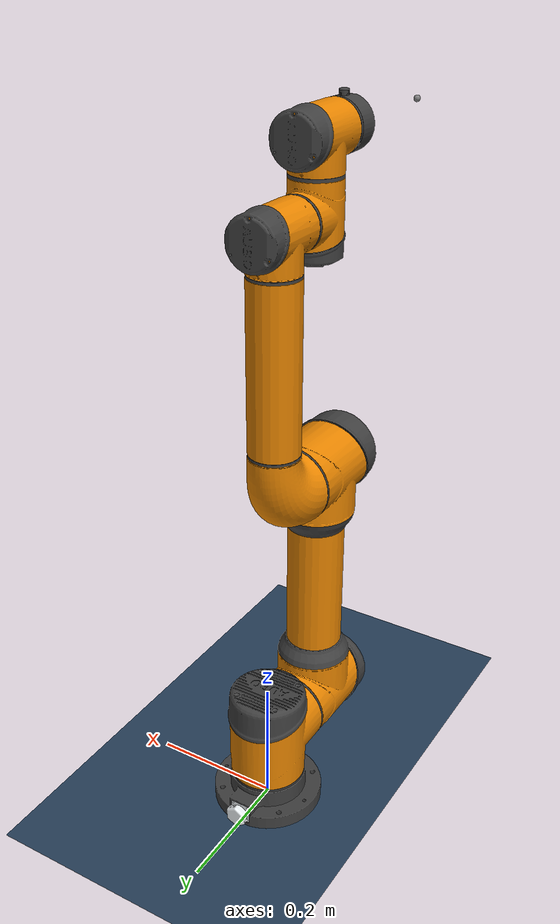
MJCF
<mujoco model="ur5e scene">

    <include file="aubo_i5.xml"/>

    <statistic center="0.3 0 0.4" extent="0.8"/>

    <visual>
      <headlight diffuse="0.6 0.6 0.6" ambient="0.1 0.1 0.1" specular="0 0 0"/>
      <rgba haze="0.15 0.25 0.35 1"/>
      <global azimuth="120" elevation="-20"/>
    </visual>

    <asset>
      <texture type="skybox" builtin="gradient" rgb1="0.3 0.5 0.7" rgb2="0 0 0" width="512" height="3072"/>
      <texture type="2d" name="groundplane" builtin="checker" mark="edge" rgb1="0.2 0.3 0.4" rgb2="0.1 0.2 0.3"
        markrgb="0.8 0.8 0.8" width="300" height="300"/>
      <material name="groundplane" texture="groundplane" texuniform="true" texrepeat="5 5" reflectance="0.2"/>
    </asset>

    <worldbody>
      <light pos="0 0 1.5" dir="0 0 -1" directional="true"/>
      <geom name="floor" size="0 0 0.05" type="plane" material="groundplane"/>
    </worldbody>

  </mujoco>

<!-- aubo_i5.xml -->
<mujoco model="aubo_i5">
  <compiler angle="radian" meshdir="meshes" autolimits="true" />

  <option integrator="implicitfast"/>

  <default>
    <default class="visual">
      <geom group="2" type="mesh" contype="0" conaffinity="0" density="0"/>
    </default>
    <default class="collision">
      <geom group="3" type="mesh" density="2700"/>
    </default>
  </default>

  <asset>
    <material name="Opaque(63,63,63)" specular="0.5" shininess="0.5" rgba="0.250980 0.250980 0.250980 1.0"/>
    <material name="Opaque(229,234,237)" specular="0.5" shininess="0.5" rgba="0.898039 0.917647 0.929412 1.0"/>
    <material name="Opaque(232,133,0)" specular="0.5" shininess="0.5" rgba="0.909804 0.521569 0.000000 1.0"/>
    <material name="Opaque(202,209,238)" specular="0.5" shininess="0.5" rgba="0.792157 0.819608 0.933333 1.0"/>
    <material name="Opaque(255,255,255)" specular="0.5" shininess="0.5" rgba="1.000000 1.000000 1.000000 1.0"/>

    <mesh file="visual/base_link_0.obj" scale="0.001 0.001 0.001"/>
    <mesh file="visual/base_link_1.obj" scale="0.001 0.001 0.001"/>
    <mesh file="visual/shoulder_link_0.obj" scale="0.001 0.001 0.001"/>
    <mesh file="visual/shoulder_link_1.obj" scale="0.001 0.001 0.001"/>
    <mesh file="visual/upper_arm_link_0.obj" scale="0.001 0.001 0.001"/>
    <mesh file="visual/upper_arm_link_1.obj" scale="0.001 0.001 0.001"/>
    <mesh file="visual/forearm_link_0.obj" scale="0.001 0.001 0.001"/>
    <mesh file="visual/forearm_link_1.obj" scale="0.001 0.001 0.001"/>
    <mesh file="visual/wrist_1_link_0.obj" scale="0.001 0.001 0.001"/>
    <mesh file="visual/wrist_1_link_1.obj" scale="0.001 0.001 0.001"/>
    <mesh file="visual/wrist_2_link_0.obj" scale="0.001 0.001 0.001"/>
    <mesh file="visual/wrist_2_link_1.obj" scale="0.001 0.001 0.001"/>
    <mesh file="visual/wrist_3_link_0.obj" scale="0.001 0.001 0.001"/>
    <mesh file="visual/wrist_3_link_1.obj" scale="0.001 0.001 0.001"/>
    <mesh file="visual/wrist_3_link_2.obj" scale="0.001 0.001 0.001"/>
    <mesh file="visual/wrist_3_link_3.obj" scale="0.001 0.001 0.001"/>

    <mesh file="collision/base_link_collision.stl" scale="0.001 0.001 0.001"/>
    <mesh file="collision/shoulder_link_collision.stl" scale="0.001 0.001 0.001"/>
    <mesh file="collision/upper_arm_link_collision_0.stl" scale="0.001 0.001 0.001"/>
    <mesh file="collision/upper_arm_link_collision_1.stl" scale="0.001 0.001 0.001"/>
    <mesh file="collision/upper_arm_link_collision_2.stl" scale="0.001 0.001 0.001"/>
    <mesh file="collision/forearm_link_collision_0.stl" scale="0.001 0.001 0.001"/>
    <mesh file="collision/forearm_link_collision_1.stl" scale="0.001 0.001 0.001"/>
    <mesh file="collision/forearm_link_collision_2.stl" scale="0.001 0.001 0.001"/>
    <mesh file="collision/wrist_1_link_collision.stl" scale="0.001 0.001 0.001"/>
    <mesh file="collision/wrist_2_link_collision.stl" scale="0.001 0.001 0.001"/>
    <mesh file="collision/wrist_3_link_collision.stl" scale="0.001 0.001 0.001"/>
  </asset>
  <worldbody>
    <body name="base_link">
      <inertial pos="5.28033e-09 0.00159669 0.0165705" quat="0.495398 0.50456 -0.50456 0.495398" mass="1.43822" diaginertia="0.0055319 0.003103 0.0028571"/>
      <geom mesh="base_link_0" material="Opaque(229,234,237)" class="visual"/>
      <geom mesh="base_link_1" material="Opaque(63,63,63)" class="visual"/>
      <geom mesh="base_link_collision" class="collision"/>

      <body name="shoulder_link" pos="0 0 0.0435">
        <inertial pos="-4.18504e-07 -0.00538388 0.0698852" quat="0.997139 0.0755851 0 0" mass="3.99774" diaginertia="0.010612 0.0103292 0.00776575"/>
        <joint name="shoulder_pan_joint" pos="0 0 0" axis="0 0 1" range="-3.04 3.04"/>
        <geom mesh="shoulder_link_0" pos="0 0 -0.0435" material="Opaque(63,63,63)" class="visual"/>
        <geom mesh="shoulder_link_1" pos="0 0 -0.0435" material="Opaque(232,133,0)" class="visual"/>
        <geom mesh="shoulder_link_collision" pos="0 0 -0.0435" class="collision"/>

        <body name="upper_arm_link" pos="0 -0.062 0.0785">
          <inertial pos="4.51558e-10 -0.0717894 0.204" quat="1 0 -1.45662e-06 0" mass="10.2644" diaginertia="0.367413 0.361705 0.024156"/>
          <joint name="shoulder_lift_joint" pos="0 0 0" axis="0 -1 0" range="-3.04 3.04"/>
          <geom mesh="upper_arm_link_0" pos="0 0.062 -0.122" material="Opaque(63,63,63)" class="visual"/>
          <geom mesh="upper_arm_link_1" pos="0 0.062 -0.122" material="Opaque(232,133,0)" class="visual"/>
          <geom mesh="upper_arm_link_collision_0" pos="0 0.062 -0.122" class="collision"/>
          <geom mesh="upper_arm_link_collision_1" pos="0 0.062 -0.122" class="collision"/>
          <geom mesh="upper_arm_link_collision_2" pos="0 0.062 -0.122" class="collision"/>

          <body name="forearm_link" pos="0 0 0.408">
            <inertial pos="-8.5989e-08 0.0377796 0.186257" quat="0.999989 -0.00464387 0 0" mass="5.71706" diaginertia="0.110129 0.109714 0.00516198"/>
            <joint name="elbow_joint" pos="0 0 0" axis="0 1 0" range="-3.04 3.04"/>
            <geom mesh="forearm_link_0" pos="0 0.062 -0.53" material="Opaque(63,63,63)" class="visual"/>
            <geom mesh="forearm_link_1" pos="0 0.062 -0.53" material="Opaque(232,133,0)" class="visual"/>
            <geom mesh="forearm_link_collision_0" pos="0 0.062 -0.53" class="collision"/>
            <geom mesh="forearm_link_collision_1" pos="0 0.062 -0.53" class="collision"/>
            <geom mesh="forearm_link_collision_2" pos="0 0.062 -0.53" class="collision"/>

            <body name="wrist_1_link" pos="0 -0.0175 0.376">
              <inertial pos="4.04369e-07 -0.0378176 0.010378" quat="0.996128 0.0879183 0 0" mass="1.19598" diaginertia="0.001481 0.00143005 0.000971945"/>
              <joint name="wrist_1_joint" pos="0 0 0" axis="0 -1 0" range="-3.04 3.04"/>
              <geom mesh="wrist_1_link_0" pos="0 0.0795 -0.906" material="Opaque(63,63,63)" class="visual"/>
              <geom mesh="wrist_1_link_1" pos="0 0.0795 -0.906" material="Opaque(232,133,0)" class="visual"/>
              <geom mesh="wrist_1_link_collision" pos="0 0.0795 -0.906" class="collision"/>

              <body name="wrist_2_link" pos="0 -0.042 0.06056">
                <inertial pos="-3.83591e-07 -0.0103783 0.0378173" quat="0.766536 0.642201 0 0" mass="1.19598" diaginertia="0.001481 0.00143005 0.000971945"/>
                <joint name="wrist_2_joint" pos="0 0 0" axis="0 0 1" range="-3.04 3.04"/>
                <geom mesh="wrist_2_link_0" pos="0 0.1215 -0.96656" material="Opaque(63,63,63)" class="visual"/>
                <geom mesh="wrist_2_link_1" pos="0 0.1215 -0.96656" material="Opaque(232,133,0)" class="visual"/>
                <geom mesh="wrist_2_link_collision" pos="0 0.1215 -0.96656" class="collision"/>

                <body name="wrist_3_link" pos="0 -0.06056 0.042">
                  <inertial pos="4.15409e-09 -0.0185535 0.000352259" quat="0.707088 -0.00519777 0.00519777 0.707088" mass="0.192478" diaginertia="0.000169015 0.000104 0.000100985"/>
                  <joint name="wrist_3_joint" pos="0 0 0" axis="0 -1 0" range="-3.04 3.04"/>
                  <geom mesh="wrist_3_link_0" pos="0 0.18206 -1.00856" material="Opaque(229,234,237)" class="visual"/>
                  <geom mesh="wrist_3_link_1" pos="0 0.18206 -1.00856" material="Opaque(63,63,63)" class="visual"/>
                  <geom mesh="wrist_3_link_2" pos="0 0.18206 -1.00856" material="Opaque(63,63,63)" class="visual"/>
                  <geom mesh="wrist_3_link_3" pos="0 0.18206 -1.00856" material="Opaque(63,63,63)" class="visual"/>
                  <geom mesh="wrist_3_link_collision" pos="0 0.18206 -1.00856" class="collision"/>

                  <body name="tool0_link" pos="0 -0.0335 0" quat="0.7071068 0.7071068 0 0">
                    <site name="attachment_site" pos="0 0 0" quat="1 0 0 0"/>
                    <site name="eef_site" pos="0 0 0.2" quat="0 -0.7071068 -0.7071068 0"/>
                  </body>
                </body>
              </body>
            </body>
          </body>
        </body>
      </body>
    </body>
  </worldbody>

  <contact>
    <exclude body1="base_link" body2="shoulder_link"/>
  </contact>
</mujoco>
